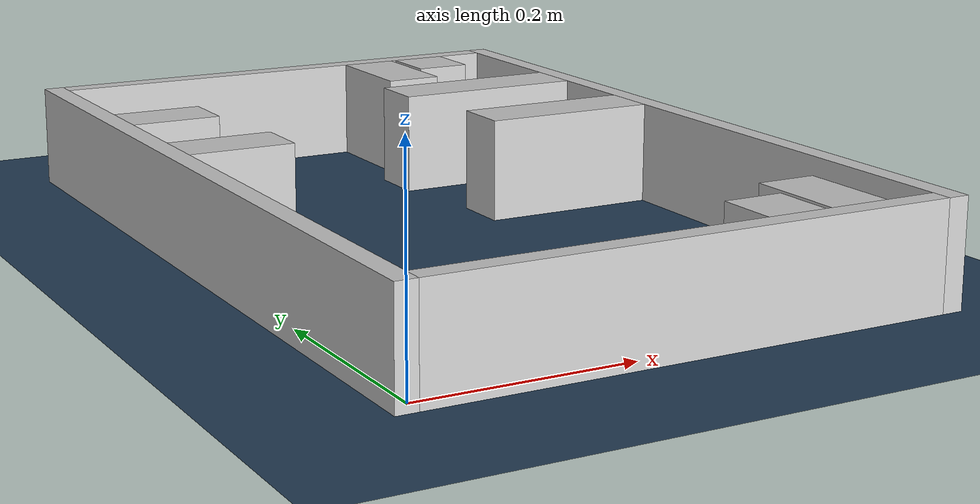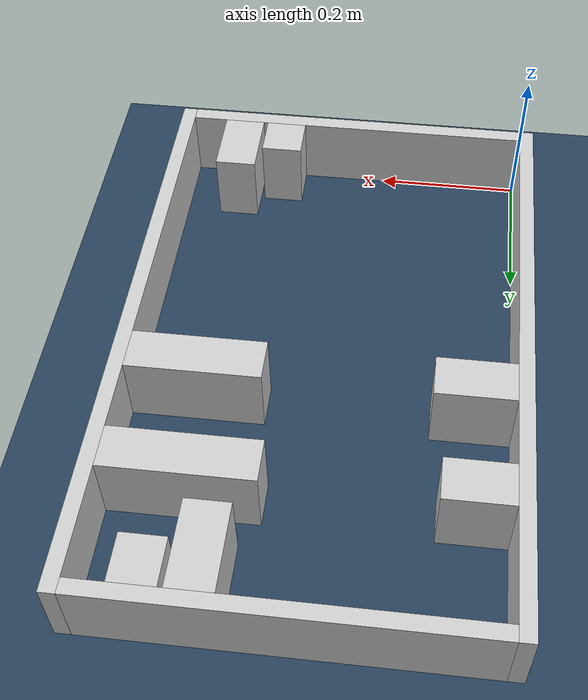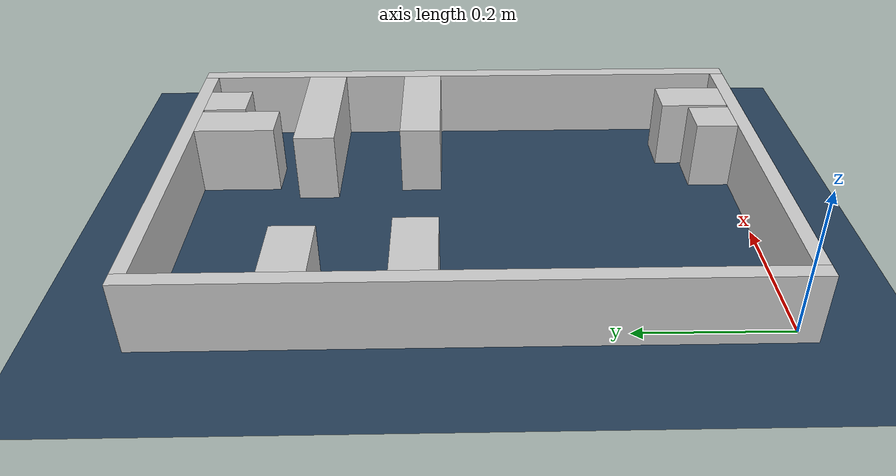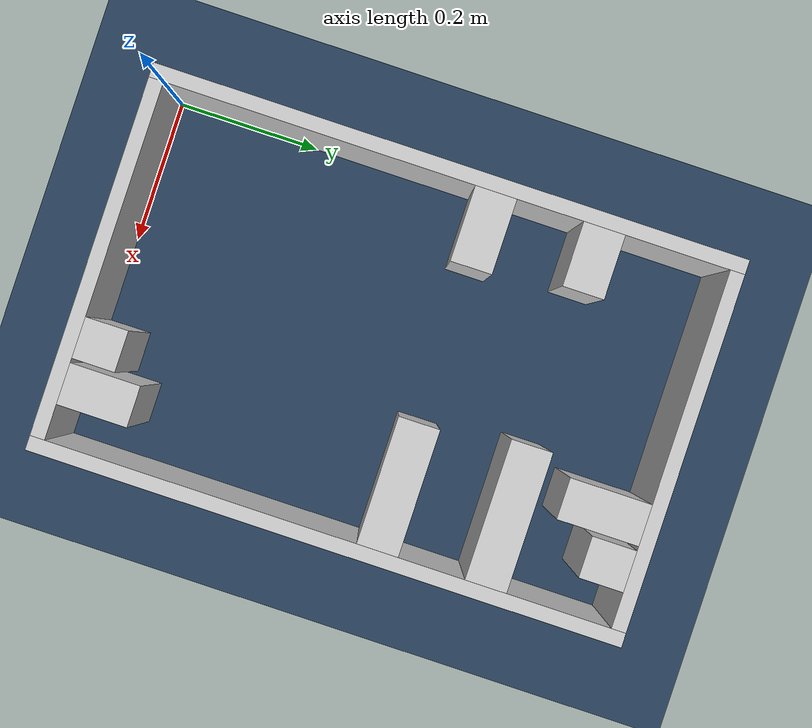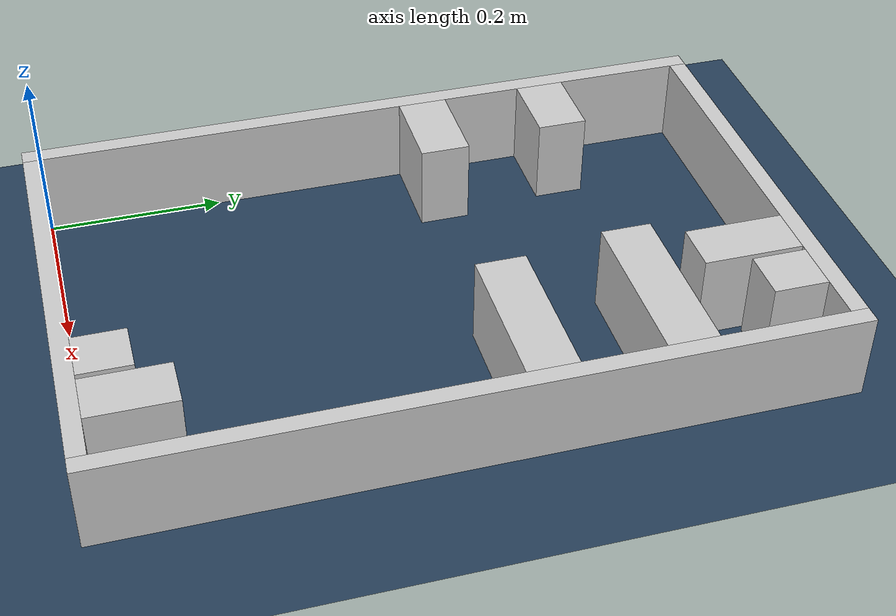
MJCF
<?xml version="1.0" ?>
<mujoco model="generated_real_template">
  <compiler angle="degree"/>
  <option timestep="0.002" integrator="implicitfast" iterations="100" cone="elliptic"/>
  <default>
    <geom density="1"/>
  </default>
  <asset>
    <texture builtin="gradient" height="3072" rgb1="0.3 0.5 0.7" rgb2="0 0 0" type="skybox" width="512"/>
    <texture builtin="checker" height="300" mark="edge" markrgb="0.8 0.8 0.8" name="groundplane" rgb1="0.2 0.3 0.4" rgb2="0.1 0.2 0.3" type="2d" width="300"/>
    <material name="groundplane" reflectance="0.2" texrepeat="5 5" texture="groundplane" texuniform="true"/>
  </asset>
  <worldbody>
    <light dir="0 0 -1" directional="true" pos="0 0 1.5"/>
    <geom name="floor" type="plane" condim="4" friction="0.5 0.005 0.001" material="groundplane" size="0 0 0.05"/>
    <body name="walls">
      <geom name="wall_boundary_left" type="box" condim="4" friction="1.0 0.005 0.0001" rgba="0.8 0.8 0.8 1" pos="-0.010000 0.387500 0.050000" euler="0 0 0.000000" size="0.010000 0.407500 0.050000"/>
      <geom name="wall_boundary_right" type="box" condim="4" friction="1.0 0.005 0.0001" rgba="0.8 0.8 0.8 1" pos="0.500000 0.387500 0.050000" euler="0 0 0.000000" size="0.010000 0.407500 0.050000"/>
      <geom name="wall_boundary_bottom" type="box" condim="4" friction="1.0 0.005 0.0001" rgba="0.8 0.8 0.8 1" pos="0.245000 -0.010000 0.050000" euler="0 0 0.000000" size="0.245000 0.010000 0.050000"/>
      <geom name="wall_boundary_top" type="box" condim="4" friction="1.0 0.005 0.0001" rgba="0.8 0.8 0.8 1" pos="0.245000 0.785000 0.050000" euler="0 0 0.000000" size="0.245000 0.010000 0.050000"/>
      <geom name="wall_inner_1_1" type="box" condim="4" friction="1.0 0.005 0.0001" rgba="0.8 0.8 0.8 1" pos="0.051719 0.454880 0.050000" euler="0 0 0.000000" size="0.051719 0.028500 0.050000"/>
      <geom name="wall_inner_1_2" type="box" condim="4" friction="1.0 0.005 0.0001" rgba="0.8 0.8 0.8 1" pos="0.402779 0.454880 0.050000" euler="0 0 0.000000" size="0.087221 0.028500 0.050000"/>
      <geom name="wall_inner_2_1" type="box" condim="4" friction="1.0 0.005 0.0001" rgba="0.8 0.8 0.8 1" pos="0.349595 0.029431 0.050000" euler="0 0 90.000000" size="0.029431 0.028500 0.050000"/>
      <geom name="wall_inner_2_2" type="box" condim="4" friction="1.0 0.005 0.0001" rgba="0.8 0.8 0.8 1" pos="0.349595 0.718958 0.050000" euler="0 0 90.000000" size="0.056042 0.028500 0.050000"/>
      <geom name="wall_inner_3_1" type="box" condim="4" friction="1.0 0.005 0.0001" rgba="0.8 0.8 0.8 1" pos="0.044228 0.603247 0.050000" euler="0 0 0.000000" size="0.044228 0.028500 0.050000"/>
      <geom name="wall_inner_3_2" type="box" condim="4" friction="1.0 0.005 0.0001" rgba="0.8 0.8 0.8 1" pos="0.393798 0.603247 0.050000" euler="0 0 0.000000" size="0.096202 0.028500 0.050000"/>
      <geom name="wall_inner_4_1" type="box" condim="4" friction="1.0 0.005 0.0001" rgba="0.8 0.8 0.8 1" pos="0.412575 0.048133 0.050000" euler="0 0 90.000000" size="0.048133 0.028500 0.050000"/>
      <geom name="wall_inner_4_2" type="box" condim="4" friction="1.0 0.005 0.0001" rgba="0.8 0.8 0.8 1" pos="0.412575 0.744348 0.050000" euler="0 0 90.000000" size="0.030652 0.028500 0.050000"/>
    </body>
  </worldbody>
</mujoco>
